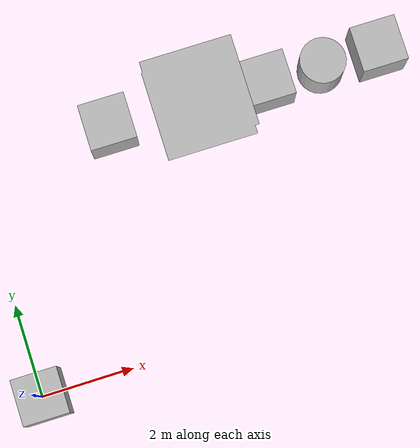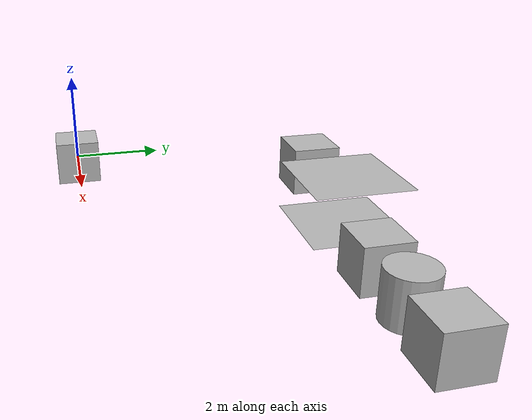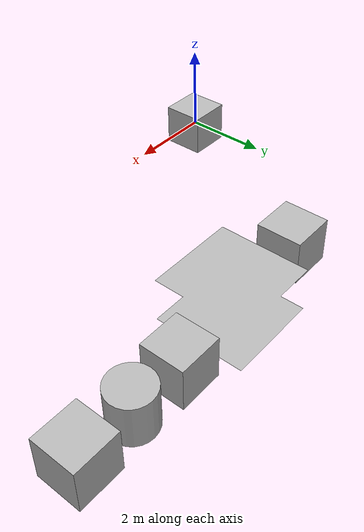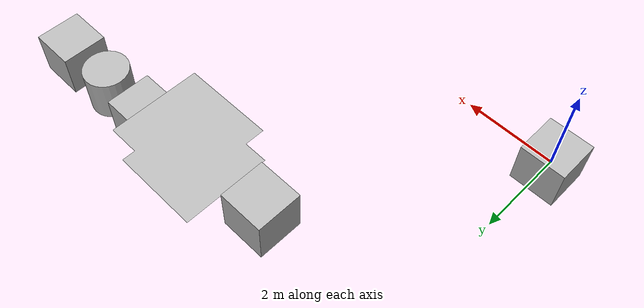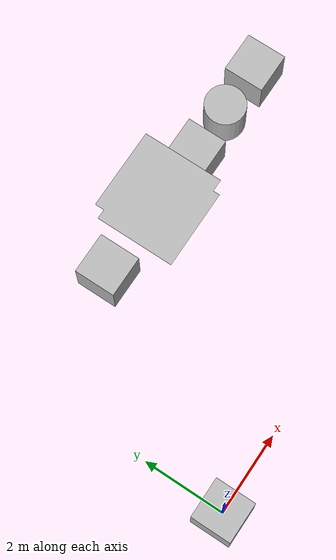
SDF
<?xml version='1.0' ?>
<sdf version='1.6'>
  <world name='world with spaces'>
    <model name='model with spaces'>
      <link name='link with spaces'>
        <collision name='collision with spaces'>
          <geometry>
            <box>
              <size>1 1 1</size>
            </box>
          </geometry>
        </collision>
        <visual name='visual with spaces'>
          <geometry>
            <box>
              <size>1 1 1</size>
            </box>
          </geometry>
        </visual>
      </link>
    </model>
    <include>
      <pose>5 5 0 0 0 0</pose>
      <name>included model</name>
      <uri>model://model with spaces</uri>
    </include>
  </world>
</sdf>

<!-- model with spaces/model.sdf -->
<sdf version="1.5">
  <model name="model with spaces">
    <pose>0 0 0.5 0 0 0</pose>
    <link name="link with spaces">
      <collision name="collision with spaces">
        <geometry>
          <mesh>
            <uri>model://model with spaces/meshes/mesh with spaces.dae</uri>
          </mesh>
        </geometry>
      </collision>
      <visual name="visual with spaces">
        <geometry>
          <mesh>
            <uri>model://model with spaces/meshes/mesh with spaces.dae</uri>
            <submesh>
              <name>Plane1</name>
            </submesh>
          </mesh>
        </geometry>
      </visual>
      <visual name="visual with material">
        <geometry>
          <mesh>
            <uri>model://model with spaces/meshes/mesh with spaces.dae</uri>
            <submesh>
              <name>Plane2</name>
            </submesh>
          </mesh>
        </geometry>
        <material>
          <script>
            <uri>model://model with spaces/materials/scripts/</uri>
            <uri>model://model with spaces/materials/textures/</uri>
            <name>material with spaces</name>
          </script>
          <shader type="normal_map_tangent_space">
            <normal_map>model://model with spaces/materials/textures/normal with spaces.png</normal_map>
          </shader>
        </material>
      </visual>
    </link>

    <link name="link with spaces in obj">
      <pose>-2.0 0 0.5 0 0 0</pose>
      <collision name="collision with spaces in obj">
        <geometry>
          <mesh>
            <uri>model://model with spaces/meshes/mesh with spaces.obj</uri>
          </mesh>
        </geometry>
      </collision>
      <visual name="visual with spaces in obj">
        <geometry>
          <mesh>
            <uri>model://model with spaces/meshes/mesh with spaces.obj</uri>
          </mesh>
        </geometry>
      </visual>
    </link>

    <model name="nested model with spaces">
      <pose>1.25 0 0.0 0 0 0</pose>
      <link name="nested link with spaces">
        <pose>0.25 0 0.0 0 0 0</pose>
        <collision name="nested collision with spaces">
          <geometry>
            <box>
              <size>1 1 1</size>
            </box>
          </geometry>
        </collision>
        <visual name="nested visual with spaces">
          <geometry>
            <box>
              <size>1 1 1</size>
            </box>
          </geometry>
        </visual>
      </link>
      <model name="deeper nested model with spaces">
        <pose>1.25 0 0.0 0 0 0</pose>
        <link name="deeper nested link with spaces">
          <pose>0.25 0 0.0 0 0 0</pose>
          <collision name="deeper nested collision with spaces">
            <geometry>
              <cylinder>
                <radius>0.5</radius>
                <length>1</length>
              </cylinder>
            </geometry>
          </collision>
          <visual name="deeper nested visual with spaces">
            <geometry>
              <cylinder>
                <radius>0.5</radius>
                <length>1</length>
              </cylinder>
            </geometry>
          </visual>
        </link>
        <model name="even deeper nested model with spaces">
          <pose>1.25 0 0.0 0 0 0</pose>
          <link name="even deeper nested link with spaces">
            <pose>0.25 0 0.0 0 0 0</pose>
            <collision name="even deeper nested collision with spaces">
              <geometry>
                <box>
                  <size>1 1 1</size>
                </box>
              </geometry>
            </collision>
            <visual name="even deeper nested visual with spaces">
              <geometry>
                <box>
                  <size>1 1 1</size>
                </box>
              </geometry>
            </visual>
          </link>
        </model>
      </model>
    </model>

    <joint name="joint with spaces" type="revolute">
      <parent>link with spaces</parent>
      <child>nested model with spaces::nested link with spaces</child>
      <pose>0.0 0.0 0.0 0.0 0.0 0.0</pose>
      <axis>
        <xyz>1.0 0.0 0.0</xyz>
      </axis>
    </joint>

    <joint name="joint between top link and link in nested model" type="revolute">
      <parent>nested model with spaces::nested link with spaces</parent>
      <child>nested model with spaces::deeper nested model with spaces::deeper nested link with spaces</child>
      <pose>0.0 0.0 0.0 0.0 0.0 0.0</pose>
      <axis>
        <xyz>1.0 0.0 0.0</xyz>
      </axis>
    </joint>

    <joint name="joint between links nested at different depths" type="revolute">
      <parent>nested model with spaces::deeper nested model with spaces::deeper nested link with spaces</parent>
      <child>nested model with spaces::deeper nested model with spaces::even deeper nested model with spaces::even deeper nested link with spaces</child>
      <pose>0.0 0.0 0.0 0.0 0.0 0.0</pose>
      <axis>
        <xyz>1.0 0.0 0.0</xyz>
      </axis>
    </joint>
  </model>
</sdf>
